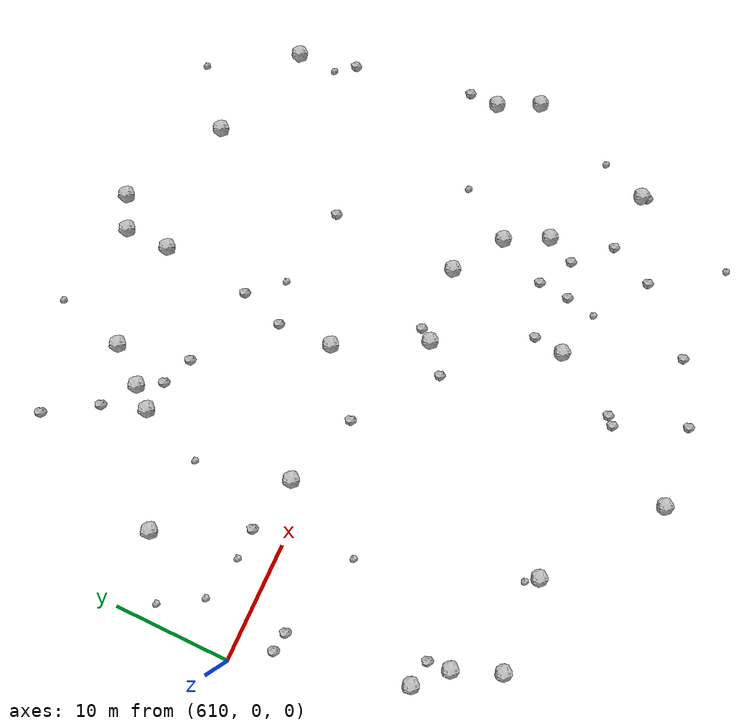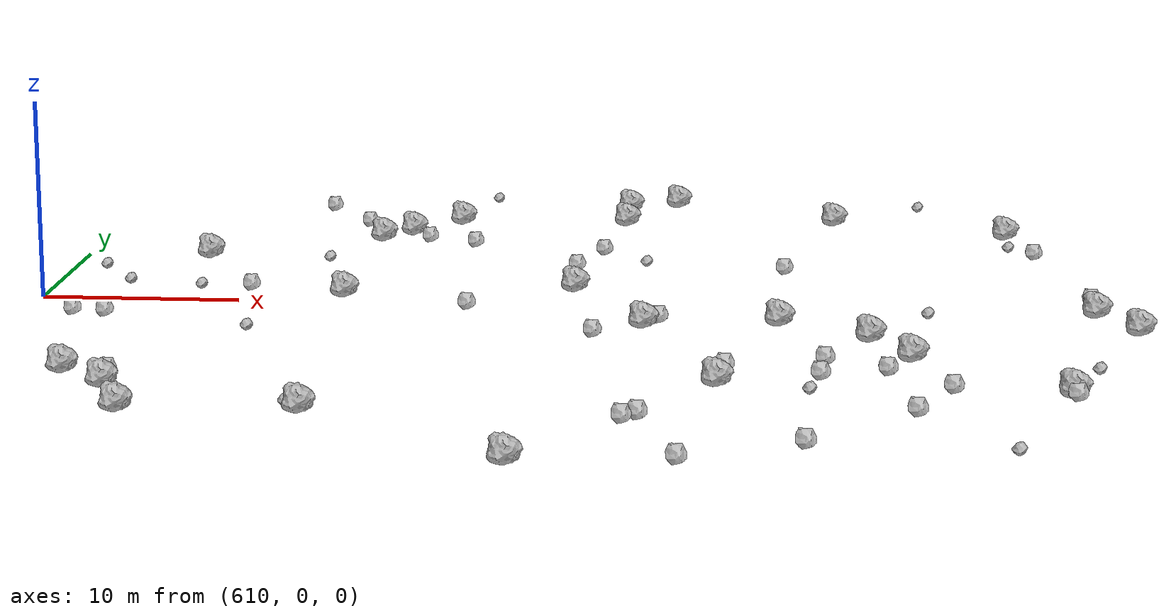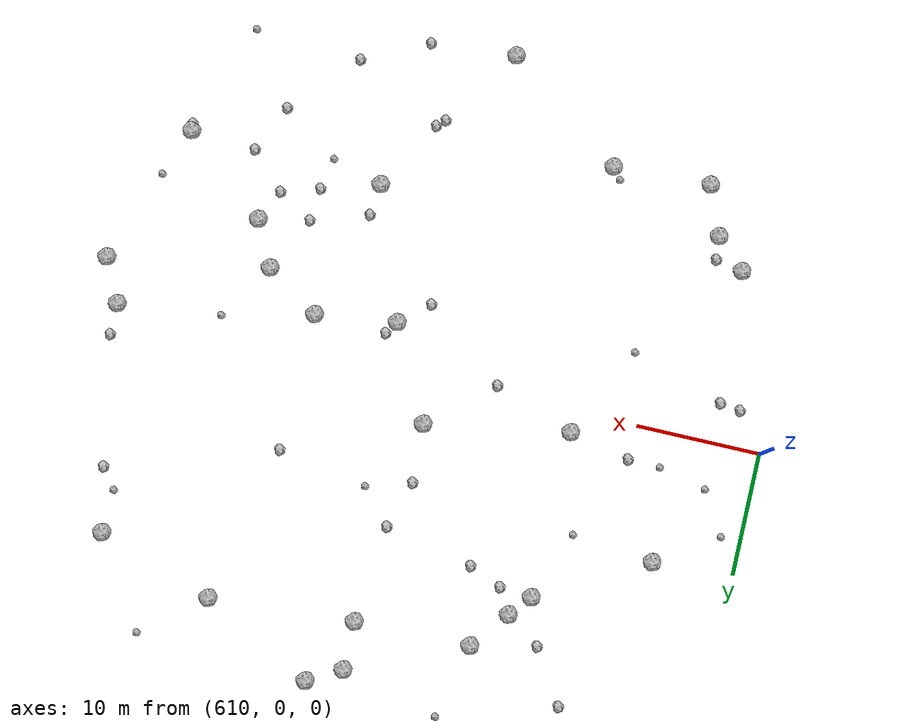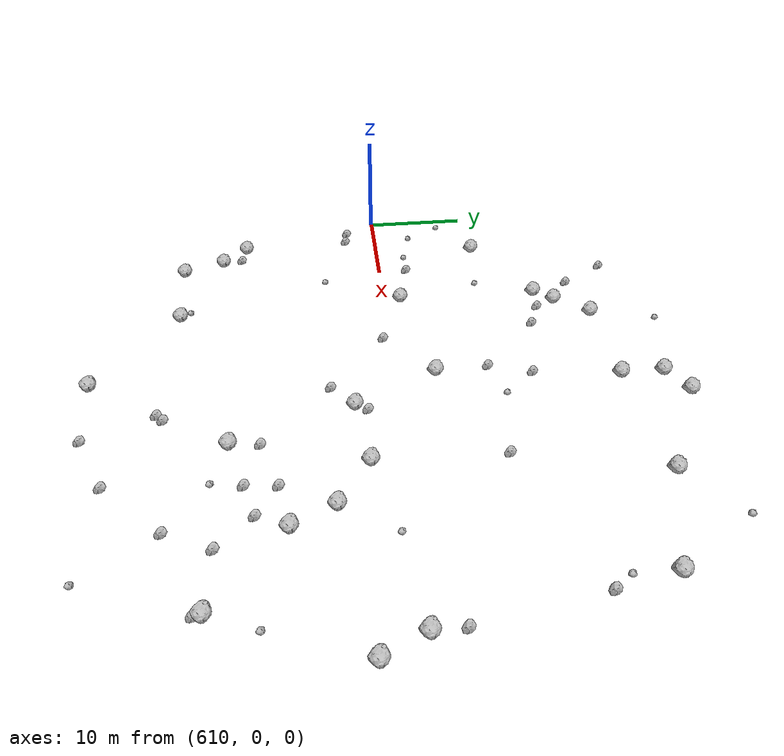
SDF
<sdf version="1.6">
 <world name="default">
  <include><uri>model://sun</uri></include>
  <model name="rock1_16_3">
   <include><uri>model://rock1</uri><pose>616.9505164339562 -16.390971104328713 0.5 0 0 0</pose></include>
  </model>
  <model name="rock1_16_4">
   <include><uri>model://rock1</uri><pose>664.5507308457935 -3.9019679650197823 0.5 0 0 0</pose></include>
  </model>
  <model name="rock1_16_5">
   <include><uri>model://rock1</uri><pose>644.4013623096829 -14.472041472192085 0.5 0 0 0</pose></include>
  </model>
  <model name="rock1_16_6">
   <include><uri>model://rock1</uri><pose>626.8309263948049 16.927456709230142 0.5 0 0 0</pose></include>
  </model>
  <model name="rock1_16_7">
   <include><uri>model://rock1</uri><pose>629.2764453935308 20.010676235777467 0.5 0 0 0</pose></include>
  </model>
  <model name="rock1_16_8">
   <include><uri>model://rock1</uri><pose>616.576639732016 10.327986529142926 0.5 0 0 0</pose></include>
  </model>
  <model name="rock1_16_9">
   <include><uri>model://rock1</uri><pose>638.688651633829 24.094775791037662 0.5 0 0 0</pose></include>
  </model>
  <model name="rock1_16_10">
   <include><uri>model://rock1</uri><pose>662.874982160382 -0.4195608813319325 0.5 0 0 0</pose></include>
  </model>
  <model name="rock1_16_11">
   <include><uri>model://rock1</uri><pose>651.5616114923256 -5.931253546729764 0.5 0 0 0</pose></include>
  </model>
  <model name="rock1_16_12">
   <include><uri>model://rock1</uri><pose>640.6335862326871 -3.902196397846037 0.5 0 0 0</pose></include>
  </model>
  <model name="rock1_16_13">
   <include><uri>model://rock1</uri><pose>626.4380138902162 -20.0112061796765 0.5 0 0 0</pose></include>
  </model>
  <model name="rock1_16_14">
   <include><uri>model://rock1</uri><pose>638.663123233981 20.174263142570986 0.5 0 0 0</pose></include>
  </model>
  <model name="rock1_16_15">
   <include><uri>model://rock1</uri><pose>650.4431197090814 20.91688705915059 0.5 0 0 0</pose></include>
  </model>
  <model name="rock1_16_16">
   <include><uri>model://rock1</uri><pose>636.8042338219583 3.603544612831385 0.5 0 0 0</pose></include>
  </model>
  <model name="rock1_16_17">
   <include><uri>model://rock1</uri><pose>614.5563533710156 -14.040659894833283 0.5 0 0 0</pose></include>
  </model>
  <model name="rock1_16_18">
   <include><uri>model://rock1</uri><pose>625.3482883174361 15.186177914510566 0.5 0 0 0</pose></include>
  </model>
  <model name="rock1_16_19">
   <include><uri>model://rock1</uri><pose>659.8798117790873 17.717008927561892 0.5 0 0 0</pose></include>
  </model>
  <model name="rock1_16_20">
   <include><uri>model://rock1</uri><pose>647.243411653347 -3.0592468964417954 0.5 0 0 0</pose></include>
  </model>
  <model name="rock1_16_21">
   <include><uri>model://rock1</uri><pose>660.2153684030009 -15.368531640284635 0.5 0 0 0</pose></include>
  </model>
  <model name="rock1_16_22">
   <include><uri>model://rock1</uri><pose>618.5028113502368 -20.316705697919748 0.5 0 0 0</pose></include>
  </model>
  <model name="rock1_16_23">
   <include><uri>model://rock1</uri><pose>641.429037348992 25.606422067807593 0.5 0 0 0</pose></include>
  </model>
  <model name="rock1_16_24">
   <include><uri>model://rock1</uri><pose>625.152298970596 1.646497054182145 0.5 0 0 0</pose></include>
  </model>
  <model name="rock1_16_25">
   <include><uri>model://rock1</uri><pose>653.3764324511736 -9.553968931077645 0.5 0 0 0</pose></include>
  </model>
  <model name="rock1_16_26">
   <include><uri>model://rock1</uri><pose>636.0475218664504 -27.103137405241032 0.5 0 0 0</pose></include>
  </model>
  <model name="rock2_16_0">
   <include><uri>model://rock2</uri><pose>613.945354342276 -3.2523037960647194 0.3 0 0 0</pose></include>
  </model>
  <model name="rock2_16_1">
   <include><uri>model://rock2</uri><pose>637.7922752540196 12.282534135371804 0.3 0 0 0</pose></include>
  </model>
  <model name="rock2_16_2">
   <include><uri>model://rock2</uri><pose>641.3335240974533 -2.821631712298906 0.3 0 0 0</pose></include>
  </model>
  <model name="rock2_16_3">
   <include><uri>model://rock2</uri><pose>631.6461971078436 -0.6735510994037242 0.3 0 0 0</pose></include>
  </model>
  <model name="rock2_16_4">
   <include><uri>model://rock2</uri><pose>627.9422237512457 14.987346888636814 0.3 0 0 0</pose></include>
  </model>
  <model name="rock2_16_5">
   <include><uri>model://rock2</uri><pose>644.687029765157 -11.8697674370665 0.3 0 0 0</pose></include>
  </model>
  <model name="rock2_16_6">
   <include><uri>model://rock2</uri><pose>652.1184628861096 -12.097665998376776 0.3 0 0 0</pose></include>
  </model>
  <model name="rock2_16_7">
   <include><uri>model://rock2</uri><pose>653.1080588391297 -18.844234807701703 0.3 0 0 0</pose></include>
  </model>
  <model name="rock2_16_8">
   <include><uri>model://rock2</uri><pose>647.5166587173265 8.177781415506715 0.3 0 0 0</pose></include>
  </model>
  <model name="rock2_16_9">
   <include><uri>model://rock2</uri><pose>624.0276781228346 18.935338618301977 0.3 0 0 0</pose></include>
  </model>
  <model name="rock2_16_10">
   <include><uri>model://rock2</uri><pose>640.4179620584142 -20.701774005259484 0.3 0 0 0</pose></include>
  </model>
  <model name="rock2_16_11">
   <include><uri>model://rock2</uri><pose>616.7396433293094 -14.480734914213077 0.3 0 0 0</pose></include>
  </model>
  <model name="rock2_16_12">
   <include><uri>model://rock2</uri><pose>630.5858686364218 13.857156043094697 0.3 0 0 0</pose></include>
  </model>
  <model name="rock2_16_13">
   <include><uri>model://rock2</uri><pose>620.1758985645967 2.7788619434257527 0.3 0 0 0</pose></include>
  </model>
  <model name="rock2_16_14">
   <include><uri>model://rock2</uri><pose>641.0730539835724 -20.088709739754115 0.3 0 0 0</pose></include>
  </model>
  <model name="rock2_16_15">
   <include><uri>model://rock2</uri><pose>654.9011271120623 -14.983674630730302 0.3 0 0 0</pose></include>
  </model>
  <model name="rock2_16_16">
   <include><uri>model://rock2</uri><pose>612.2824217370962 -3.0143428539457133 0.3 0 0 0</pose></include>
  </model>
  <model name="rock2_16_17">
   <include><uri>model://rock2</uri><pose>649.0388968272773 -13.05953186667676 0.3 0 0 0</pose></include>
  </model>
  <model name="rock2_16_18">
   <include><uri>model://rock2</uri><pose>621.3424668341255 23.214506752255787 0.3 0 0 0</pose></include>
  </model>
  <model name="rock2_16_19">
   <include><uri>model://rock2</uri><pose>649.2979714335371 -10.35584297145138 0.3 0 0 0</pose></include>
  </model>
  <model name="rock2_16_20">
   <include><uri>model://rock2</uri><pose>642.9593365940246 -26.57019422489112 0.3 0 0 0</pose></include>
  </model>
  <model name="rock2_16_21">
   <include><uri>model://rock2</uri><pose>660.2526352030718 -15.930710934645465 0.3 0 0 0</pose></include>
  </model>
  <model name="rock2_16_22">
   <include><uri>model://rock2</uri><pose>636.564421787574 8.418086325271886 0.3 0 0 0</pose></include>
  </model>
  <model name="rock2_16_23">
   <include><uri>model://rock2</uri><pose>638.2500957077758 -5.884200808441186 0.3 0 0 0</pose></include>
  </model>
  <model name="rock2_16_24">
   <include><uri>model://rock2</uri><pose>660.9502981291298 12.604592340855199 0.3 0 0 0</pose></include>
  </model>
  <model name="rock2_16_25">
   <include><uri>model://rock2</uri><pose>648.2287013254946 -24.005280829635716 0.3 0 0 0</pose></include>
  </model>
  <model name="rock2_16_26">
   <include><uri>model://rock2</uri><pose>662.8525168784597 2.1395899079171556 0.3 0 0 0</pose></include>
  </model>
  <model name="rock3_16_0">
   <include><uri>model://rock3</uri><pose>613.6417905666192 3.7315501099026633 0.2 0 0 0</pose></include>
  </model>
  <model name="rock3_16_1">
   <include><uri>model://rock3</uri><pose>625.6602166303626 -19.127995927461786 0.2 0 0 0</pose></include>
  </model>
  <model name="rock3_16_2">
   <include><uri>model://rock3</uri><pose>661.7203849151707 -11.463487315877675 0.2 0 0 0</pose></include>
  </model>
  <model name="rock3_16_3">
   <include><uri>model://rock3</uri><pose>648.5054251743962 -15.693608509140747 0.2 0 0 0</pose></include>
  </model>
  <model name="rock3_16_4">
   <include><uri>model://rock3</uri><pose>655.3496576142635 24.860521349783113 0.2 0 0 0</pose></include>
  </model>
  <model name="rock3_16_5">
   <include><uri>model://rock3</uri><pose>611.5781908226016 7.156803709113774 0.2 0 0 0</pose></include>
  </model>
  <model name="rock3_16_6">
   <include><uri>model://rock3</uri><pose>623.1535221780819 9.588593001041382 0.2 0 0 0</pose></include>
  </model>
  <model name="rock3_16_7">
   <include><uri>model://rock3</uri><pose>621.4670731776324 -5.774696691254157 0.2 0 0 0</pose></include>
  </model>
  <model name="rock3_16_8">
   <include><uri>model://rock3</uri><pose>654.5053890654981 -1.3684244485920694 0.2 0 0 0</pose></include>
  </model>
  <model name="rock3_16_9">
   <include><uri>model://rock3</uri><pose>656.9383963125625 -24.63157291390224 0.2 0 0 0</pose></include>
  </model>
  <model name="rock3_16_10">
   <include><uri>model://rock3</uri><pose>659.7198255278323 14.198317472742012 0.2 0 0 0</pose></include>
  </model>
  <model name="rock3_16_11">
   <include><uri>model://rock3</uri><pose>640.1955139995492 9.474913105709888 0.2 0 0 0</pose></include>
  </model>
  <model name="rock3_16_12">
   <include><uri>model://rock3</uri><pose>617.5351528885038 2.8094304721928722 0.2 0 0 0</pose></include>
  </model>
  <model name="rock3_16_13">
   <include><uri>model://rock3</uri><pose>630.6910901439824 26.111566880700813 0.2 0 0 0</pose></include>
  </model>
 </world>
</sdf>
